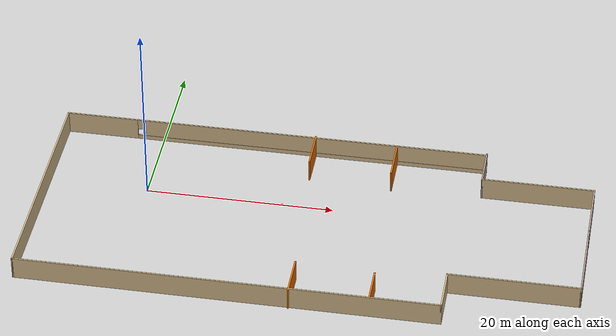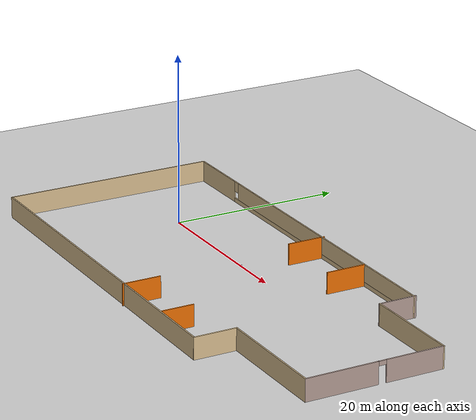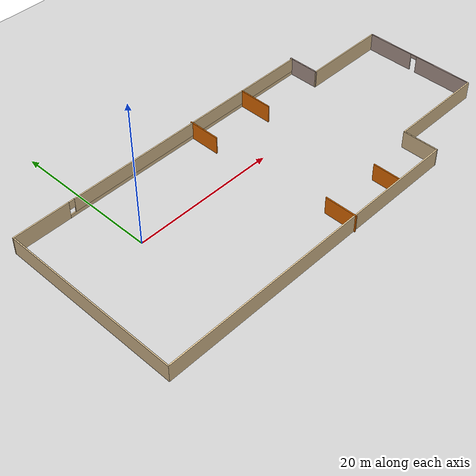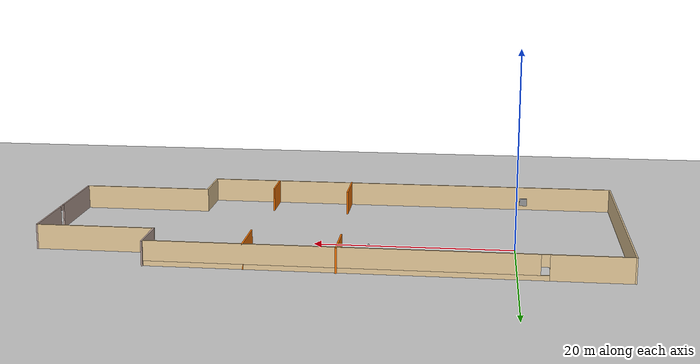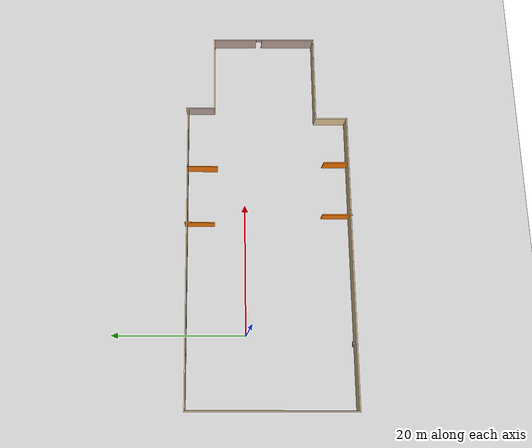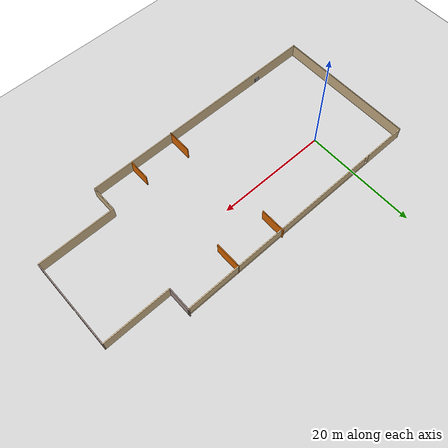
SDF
<sdf version="1.6">
 <world name="default">
  <light name="sun" type="directional">
   <pose>0 0 10 0 -0 0</pose>
   <diffuse>0.8 0.8 0.8 1</diffuse>
   <specular>0.2 0.2 0.2 1</specular>
   <attenuation>
    <range>1000</range>
    <constant>0.9</constant>
    <linear>0.01</linear>
    <quadratic>0.001</quadratic>
   </attenuation>
   <direction>-0.5 0.1 -0.9</direction>
  </light>
  <model name="ground_plane">
   <static>1</static>
   <link name="link">
    <collision name="collision">
     <geometry><plane><normal>0 0 1</normal><size>100 100</size></plane></geometry>
     <surface>
      <contact><collide_bitmask>65535</collide_bitmask></contact>
      <friction><ode><mu>100</mu><mu2>50</mu2></ode></friction>
     </surface>
    </collision>
    <visual name="visual">
     <cast_shadows>0</cast_shadows>
     <geometry><plane><normal>0 0 1</normal><size>100 100</size></plane></geometry>
     <material>
      <script><uri>file://media/materials/scripts/gazebo.material</uri><name>Gazebo/Grey</name></script>
     </material>
    </visual>
   </link>
  </model>
  <gravity>0 0 -9.8</gravity>
  <magnetic_field>6e-06 2.3e-05 -4.2e-05</magnetic_field>
  <atmosphere type="adiabatic"/>
  <physics name="default_physics" default="0" type="ode">
   <max_step_size>0.001</max_step_size>
   <real_time_factor>1</real_time_factor>
   <real_time_update_rate>1000</real_time_update_rate>
  </physics>
  <scene><ambient>0.4 0.4 0.4 1</ambient><background>0.7 0.7 0.7 1</background><shadows>1</shadows></scene>
  <spherical_coordinates>
   <surface_model>EARTH_WGS84</surface_model>
   <latitude_deg>0</latitude_deg>
   <longitude_deg>0</longitude_deg>
   <elevation>0</elevation>
   <heading_deg>0</heading_deg>
  </spherical_coordinates>
  <model name="office">
   <pose>18.2343 -3.47943 0 0 -0 0</pose>
   <link name="Wall_17">
    <collision name="Wall_17_Collision">
     <geometry><box><size>25 0.15 2.5</size></box></geometry>
     <pose>0 0 1.25 0 -0 0</pose>
    </collision>
    <visual name="Wall_17_Visual">
     <pose>0 0 1.25 0 -0 0</pose>
     <geometry><box><size>25 0.15 2.5</size></box></geometry>
     <material>
      <script><uri>file://media/materials/scripts/gazebo.material</uri><name>Gazebo/Grey</name></script>
      <ambient>0.921569 0.807843 0.615686 1</ambient>
     </material>
     <meta><layer>0</layer></meta>
    </visual>
    <pose>-28.85 -0.024486 0 0 0 -1.5708</pose>
   </link>
   <link name="Wall_18">
    <collision name="Wall_18_Collision">
     <geometry><box><size>44.25 0.15 2.5</size></box></geometry>
     <pose>0 0 1.25 0 -0 0</pose>
    </collision>
    <visual name="Wall_18_Visual">
     <pose>0 0 1.25 0 -0 0</pose>
     <geometry><box><size>44.25 0.15 2.5</size></box></geometry>
     <material>
      <script><uri>file://media/materials/scripts/gazebo.material</uri><name>Gazebo/Grey</name></script>
      <ambient>0.921569 0.807843 0.615686 1</ambient>
     </material>
     <meta><layer>0</layer></meta>
    </visual>
    <pose>-6.8 -12.4495 0 0 -0 0</pose>
   </link>
   <link name="Wall_19">
    <collision name="Wall_19_Collision">
     <geometry><box><size>5 0.15 2.5</size></box></geometry>
     <pose>0 0 1.25 0 -0 0</pose>
    </collision>
    <visual name="Wall_19_Visual">
     <pose>0 0 1.25 0 -0 0</pose>
     <geometry><box><size>5 0.15 2.5</size></box></geometry>
     <material>
      <script><uri>file://media/materials/scripts/gazebo.material</uri><name>Gazebo/Grey</name></script>
      <ambient>0.921569 0.807843 0.615686 1</ambient>
     </material>
     <meta><layer>0</layer></meta>
    </visual>
    <pose>15.25 -10.0245 0 0 -0 1.5708</pose>
   </link>
   <link name="Wall_20">
    <collision name="Wall_20_Collision">
     <geometry><box><size>13.75 0.15 2.5</size></box></geometry>
     <pose>0 0 1.25 0 -0 0</pose>
    </collision>
    <visual name="Wall_20_Visual">
     <pose>0 0 1.25 0 -0 0</pose>
     <geometry><box><size>13.75 0.15 2.5</size></box></geometry>
     <material>
      <script><uri>file://media/materials/scripts/gazebo.material</uri><name>Gazebo/Grey</name></script>
      <ambient>0.921569 0.807843 0.615686 1</ambient>
     </material>
     <meta><layer>0</layer></meta>
    </visual>
    <pose>22.05 -7.59949 0 0 -0 0</pose>
   </link>
   <link name="Wall_21">
    <pose>28.85 0.325514 0 0 -0 1.5708</pose>
    <visual name="Wall_21_Visual_0">
     <pose>-3.83369 0 1.25 0 -0 0</pose>
     <geometry><box><size>8.33262 0.15 2.5</size></box></geometry>
     <material>
      <script><uri>file://media/materials/scripts/gazebo.material</uri><name>Gazebo/Grey</name></script>
      <ambient>0.760784 0.662745 0.627451 1</ambient>
     </material>
     <meta><layer>0</layer></meta>
    </visual>
    <collision name="Wall_21_Collision_0">
     <geometry><box><size>8.33262 0.15 2.5</size></box></geometry>
     <pose>-3.83369 0 1.25 0 -0 0</pose>
    </collision>
    <visual name="Wall_21_Visual_1">
     <pose>4.61631 0 1.25 0 -0 0</pose>
     <geometry><box><size>6.76738 0.15 2.5</size></box></geometry>
     <material>
      <script><uri>file://media/materials/scripts/gazebo.material</uri><name>Gazebo/Grey</name></script>
      <ambient>0.760784 0.662745 0.627451 1</ambient>
     </material>
     <meta><layer>0</layer></meta>
    </visual>
    <collision name="Wall_21_Collision_1">
     <geometry><box><size>6.76738 0.15 2.5</size></box></geometry>
     <pose>4.61631 0 1.25 0 -0 0</pose>
    </collision>
    <visual name="Wall_21_Visual_2">
     <pose>0.782617 0 2.25 0 -0 0</pose>
     <geometry><box><size>0.9 0.15 0.5</size></box></geometry>
     <material>
      <script><uri>file://media/materials/scripts/gazebo.material</uri><name>Gazebo/Grey</name></script>
      <ambient>0.760784 0.662745 0.627451 1</ambient>
     </material>
     <meta><layer>0</layer></meta>
    </visual>
    <collision name="Wall_21_Collision_2">
     <geometry><box><size>0.9 0.15 0.5</size></box></geometry>
     <pose>0.782617 0 2.25 0 -0 0</pose>
    </collision>
   </link>
   <link name="Wall_22">
    <collision name="Wall_22_Collision">
     <geometry><box><size>12 0.15 2.5</size></box></geometry>
     <pose>0 0 1.25 0 -0 0</pose>
    </collision>
    <visual name="Wall_22_Visual">
     <pose>0 0 1.25 0 -0 0</pose>
     <geometry><box><size>12 0.15 2.5</size></box></geometry>
     <material>
      <script><uri>file://media/materials/scripts/gazebo.material</uri><name>Gazebo/Grey</name></script>
      <ambient>0.921569 0.807843 0.615686 1</ambient>
     </material>
     <meta><layer>0</layer></meta>
    </visual>
    <pose>22.925 8.25051 0 0 -0 3.14159</pose>
   </link>
   <link name="Wall_23">
    <collision name="Wall_23_Collision">
     <geometry><box><size>4.5 0.15 2.5</size></box></geometry>
     <pose>0 0 1.25 0 -0 0</pose>
    </collision>
    <visual name="Wall_23_Visual">
     <pose>0 0 1.25 0 -0 0</pose>
     <geometry><box><size>4.5 0.15 2.5</size></box></geometry>
     <material>
      <script><uri>file://media/materials/scripts/gazebo.material</uri><name>Gazebo/Grey</name></script>
      <ambient>0.760784 0.662745 0.627451 1</ambient>
     </material>
     <meta><layer>0</layer></meta>
    </visual>
    <pose>17 10.4255 0 0 -0 1.5708</pose>
   </link>
   <link name="Wall_26">
    <pose>-5.925 12.4005 0 0 -0 0</pose>
    <visual name="Wall_26_Visual_0">
     <pose>-19.0994 0 1.25 0 -0 0</pose>
     <geometry><box><size>7.80129 0.15 2.5</size></box></geometry>
     <material>
      <script><uri>file://media/materials/scripts/gazebo.material</uri><name>Gazebo/Grey</name></script>
      <ambient>0.921569 0.807843 0.615686 1</ambient>
     </material>
     <meta><layer>0</layer></meta>
    </visual>
    <collision name="Wall_26_Collision_0">
     <geometry><box><size>7.80129 0.15 2.5</size></box></geometry>
     <pose>-19.0994 0 1.25 0 -0 0</pose>
    </collision>
    <visual name="Wall_26_Visual_1">
     <pose>3.90065 0 0.25 0 -0 0</pose>
     <geometry><box><size>38.1987 0.15 0.5</size></box></geometry>
     <material>
      <script><uri>file://media/materials/scripts/gazebo.material</uri><name>Gazebo/Grey</name></script>
      <ambient>0.921569 0.807843 0.615686 1</ambient>
     </material>
     <meta><layer>0</layer></meta>
    </visual>
    <collision name="Wall_26_Collision_1">
     <geometry><box><size>38.1987 0.15 0.5</size></box></geometry>
     <pose>3.90065 0 0.25 0 -0 0</pose>
    </collision>
    <visual name="Wall_26_Visual_2">
     <pose>4.30065 0 1.5 0 -0 0</pose>
     <geometry><box><size>37.3987 0.15 2</size></box></geometry>
     <material>
      <script><uri>file://media/materials/scripts/gazebo.material</uri><name>Gazebo/Grey</name></script>
      <ambient>0.921569 0.807843 0.615686 1</ambient>
     </material>
     <meta><layer>0</layer></meta>
    </visual>
    <collision name="Wall_26_Collision_2">
     <geometry><box><size>37.3987 0.15 2</size></box></geometry>
     <pose>4.30065 0 1.5 0 -0 0</pose>
    </collision>
    <visual name="Wall_26_Visual_3">
     <pose>-14.7987 0 1.9 0 -0 0</pose>
     <geometry><box><size>0.8 0.15 1.2</size></box></geometry>
     <material>
      <script><uri>file://media/materials/scripts/gazebo.material</uri><name>Gazebo/Grey</name></script>
      <ambient>0.921569 0.807843 0.615686 1</ambient>
     </material>
     <meta><layer>0</layer></meta>
    </visual>
    <collision name="Wall_26_Collision_3">
     <geometry><box><size>0.8 0.15 1.2</size></box></geometry>
     <pose>-14.7987 0 1.9 0 -0 0</pose>
    </collision>
   </link>
   <link name="Wall_28">
    <collision name="Wall_28_Collision">
     <geometry><box><size>4.5 0.15 2.5</size></box></geometry>
     <pose>0 0 1.25 0 -0 0</pose>
    </collision>
    <visual name="Wall_28_Visual">
     <pose>0 0 1.25 0 -0 0</pose>
     <geometry><box><size>4.5 0.15 2.5</size></box></geometry>
     <material>
      <script><uri>file://media/materials/scripts/gazebo.material</uri><name>Gazebo/Grey</name></script>
      <ambient>0.996078 0.47451 0.0196078 1</ambient>
     </material>
     <meta><layer>0</layer></meta>
    </visual>
    <pose>-1.5161 10.4366 0 0 0 -1.5708</pose>
   </link>
   <link name="Wall_30">
    <collision name="Wall_30_Collision">
     <geometry><box><size>4.75 0.15 2.5</size></box></geometry>
     <pose>0 0 1.25 0 -0 0</pose>
    </collision>
    <visual name="Wall_30_Visual">
     <pose>0 0 1.25 0 -0 0</pose>
     <geometry><box><size>4.75 0.15 2.5</size></box></geometry>
     <material>
      <script><uri>file://media/materials/scripts/gazebo.material</uri><name>Gazebo/Grey</name></script>
      <ambient>0.996078 0.47451 0.0196078 1</ambient>
     </material>
     <meta><layer>0</layer></meta>
    </visual>
    <pose>7.34895 10.1005 0 0 0 -1.5708</pose>
   </link>
   <link name="Wall_32">
    <collision name="Wall_32_Collision">
     <geometry><box><size>4.5 0.15 2.5</size></box></geometry>
     <pose>0 0 1.25 0 -0 0</pose>
    </collision>
    <visual name="Wall_32_Visual">
     <pose>0 0 1.25 0 -0 0</pose>
     <geometry><box><size>4.5 0.15 2.5</size></box></geometry>
     <material>
      <script><uri>file://media/materials/scripts/gazebo.material</uri><name>Gazebo/Grey</name></script>
      <ambient>0.996078 0.47451 0.0196078 1</ambient>
     </material>
     <meta><layer>0</layer></meta>
    </visual>
    <pose>-0.249665 -10.4366 0 0 -0 1.5708</pose>
   </link>
   <link name="Wall_34">
    <collision name="Wall_34_Collision">
     <geometry><box><size>3.75 0.15 2.5</size></box></geometry>
     <pose>0 0 1.25 0 -0 0</pose>
    </collision>
    <visual name="Wall_34_Visual">
     <pose>0 0 1.25 0 -0 0</pose>
     <geometry><box><size>3.75 0.15 2.5</size></box></geometry>
     <material>
      <script><uri>file://media/materials/scripts/gazebo.material</uri><name>Gazebo/Grey</name></script>
      <ambient>0.996078 0.47451 0.0196078 1</ambient>
     </material>
     <meta><layer>0</layer></meta>
    </visual>
    <pose>7.98217 -10.495 0 0 -0 1.5708</pose>
   </link>
   <link name="Window_1">
    <collision name="Window_1_Collision">
     <geometry><box><size>0.8 0.17 0.8</size></box></geometry>
     <pose>0 0 0.4 0 -0 0</pose>
    </collision>
    <visual name="Window_1_Visual">
     <pose>0 0 0.4 0 -0 0</pose>
     <geometry><box><size>0.8 0.17 0.8</size></box></geometry>
     <material>
      <script><uri>file://media/materials/scripts/gazebo.material</uri><name>Gazebo/Grey</name></script>
     </material>
    </visual>
    <pose>-19.4573 -12.1894 0.5 0 -0 0</pose>
   </link>
   <static>1</static>
  </model>
  <model name="my_ball">
   <link name="link_0">
    <inertial>
     <mass>1</mass>
     <inertia><ixx>0.1</ixx><ixy>0</ixy><ixz>0</ixz><iyy>0.1</iyy><iyz>0</iyz><izz>0.1</izz></inertia>
    </inertial>
    <visual name="visual">
     <geometry><sphere><radius>0.1</radius></sphere></geometry>
     <material>
      <lighting>1</lighting>
      <script><uri>file://media/materials/scripts/gazebo.material</uri><name>Gazebo/Grey</name></script>
      <shader type="pixel"><normal_map>__default__</normal_map></shader>
      <ambient>1 1 1 1</ambient>
      <diffuse>1 1 1 1</diffuse>
      <specular>1 1 1 1</specular>
      <emissive>1 1 1 1</emissive>
     </material>
    </visual>
    <collision name="collision">
     <geometry><sphere><radius>0.1</radius></sphere></geometry>
     <surface>
      <friction>
       <ode><mu>1</mu><mu2>1</mu2><fdir1>0 0 0</fdir1><slip1>0</slip1><slip2>0</slip2></ode>
       <torsional>
        <coefficient>1</coefficient>
        <patch_radius>0</patch_radius>
        <surface_radius>0</surface_radius>
        <use_patch_radius>1</use_patch_radius>
        <ode><slip>0</slip></ode>
       </torsional>
      </friction>
      <bounce><restitution_coefficient>0</restitution_coefficient><threshold>1e+06</threshold></bounce>
      <contact>
       <collide_without_contact>0</collide_without_contact>
       <collide_without_contact_bitmask>1</collide_without_contact_bitmask>
       <collide_bitmask>1</collide_bitmask>
       <ode>
        <soft_cfm>0</soft_cfm>
        <soft_erp>0.2</soft_erp>
        <kp>1e+13</kp>
        <kd>1</kd>
        <max_vel>0.01</max_vel>
        <min_depth>0</min_depth>
       </ode>
       <bullet>
        <split_impulse>1</split_impulse>
        <split_impulse_penetration_threshold>-0.01</split_impulse_penetration_threshold>
        <soft_cfm>0</soft_cfm>
        <soft_erp>0.2</soft_erp>
        <kp>1e+13</kp>
        <kd>1</kd>
       </bullet>
      </contact>
     </surface>
    </collision>
   </link>
   <static>0</static>
   <pose>14.5426 0 0.1 0 -0 0</pose>
  </model>
 </world>
</sdf>
